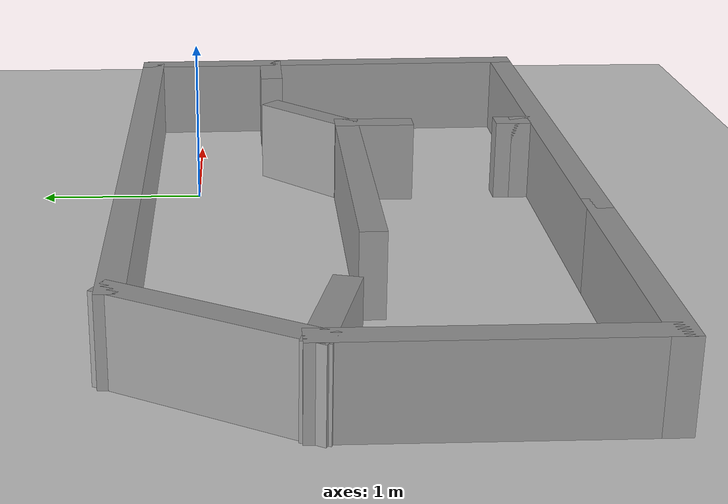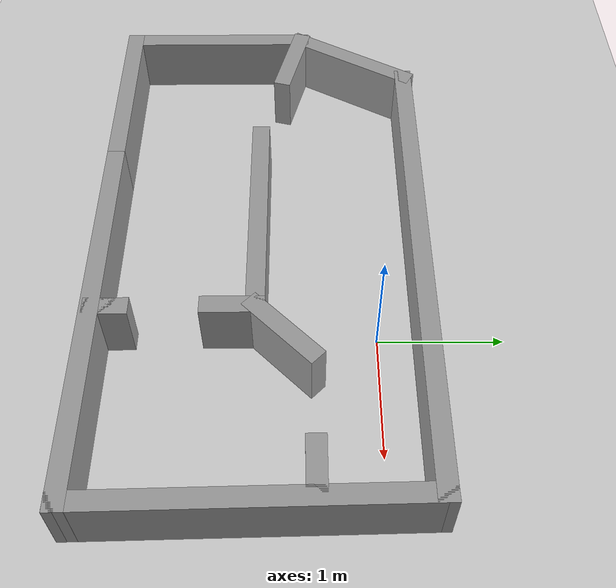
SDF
<sdf version="1.6">
 <world name="default">
  <light name="sun" type="directional">
   <pose>0 0 10 0 -0 0</pose>
   <diffuse>0.8 0.8 0.8 1</diffuse>
   <specular>0.2 0.2 0.2 1</specular>
   <attenuation>
    <range>1000</range>
    <constant>0.9</constant>
    <linear>0.01</linear>
    <quadratic>0.001</quadratic>
   </attenuation>
   <direction>-0.5 0.1 -0.9</direction>
  </light>
  <model name="ground_plane">
   <static>1</static>
   <link name="link">
    <collision name="collision">
     <geometry><plane><normal>0 0 1</normal><size>100 100</size></plane></geometry>
     <surface><friction><ode><mu>100</mu><mu2>50</mu2></ode></friction></surface>
    </collision>
    <visual name="visual">
     <cast_shadows>0</cast_shadows>
     <geometry><plane><normal>0 0 1</normal><size>100 100</size></plane></geometry>
     <material>
      <script><uri>file://media/materials/scripts/gazebo.material</uri><name>Gazebo/Grey</name></script>
     </material>
    </visual>
    <velocity_decay><linear>0</linear><angular>0</angular></velocity_decay>
   </link>
  </model>
  <physics name="default_physics" default="0" type="ode">
   <max_step_size>0.001</max_step_size>
   <real_time_factor>1</real_time_factor>
   <real_time_update_rate>1000</real_time_update_rate>
  </physics>
  <scene><ambient>0.4 0.4 0.4 1</ambient><background>0.7 0.7 0.7 1</background><shadows>1</shadows></scene>
  <spherical_coordinates>
   <surface_model>EARTH_WGS84</surface_model>
   <latitude_deg>0</latitude_deg>
   <longitude_deg>0</longitude_deg>
   <elevation>0</elevation>
   <heading_deg>0</heading_deg>
  </spherical_coordinates>
  <model name="house2">
   <pose>-0.842999 -0.907402 0 0 -0 0</pose>
   <link name="Wall_0">
    <collision name="Wall_0_Collision">
     <geometry><box><size>1.75 0.15 0.5</size></box></geometry>
     <pose>0 0 0.25 0 -0 0</pose>
    </collision>
    <visual name="Wall_0_Visual">
     <pose>0 0 0.25 0 -0 0</pose>
     <geometry><box><size>1.75 0.15 0.5</size></box></geometry>
     <material>
      <script><uri>file://media/materials/scripts/gazebo.material</uri><name>Gazebo/Grey</name></script>
      <ambient>1 1 1 1</ambient>
     </material>
     <meta><layer>0</layer></meta>
    </visual>
    <pose>-1.537 -1.28931 0 0 -0 3.14159</pose>
   </link>
   <link name="Wall_1">
    <collision name="Wall_1_Collision">
     <geometry><box><size>1.75 0.15 0.5</size></box></geometry>
     <pose>0 0 0.25 0 -0 0</pose>
    </collision>
    <visual name="Wall_1_Visual">
     <pose>0 0 0.25 0 -0 0</pose>
     <geometry><box><size>1.75 0.15 0.5</size></box></geometry>
     <material>
      <script><uri>file://media/materials/scripts/gazebo.material</uri><name>Gazebo/Grey</name></script>
      <ambient>1 1 1 1</ambient>
     </material>
     <meta><layer>0</layer></meta>
    </visual>
    <pose>-2.337 -0.489313 0 0 -0 1.5708</pose>
   </link>
   <link name="Wall_10">
    <collision name="Wall_10_Collision">
     <geometry><box><size>0.25 0.15 0.5</size></box></geometry>
     <pose>0 0 0.25 0 -0 0</pose>
    </collision>
    <visual name="Wall_10_Visual">
     <pose>0 0 0.25 0 -0 0</pose>
     <geometry><box><size>0.25 0.15 0.5</size></box></geometry>
     <material>
      <script><uri>file://media/materials/scripts/gazebo.material</uri><name>Gazebo/Grey</name></script>
      <ambient>1 1 1 1</ambient>
     </material>
     <meta><layer>0</layer></meta>
    </visual>
    <pose>0.822999 -1.11931 0 0 -0 1.5708</pose>
   </link>
   <link name="Wall_12">
    <collision name="Wall_12_Collision">
     <geometry><box><size>1.25 0.15 0.5</size></box></geometry>
     <pose>0 0 0.25 0 -0 0</pose>
    </collision>
    <visual name="Wall_12_Visual">
     <pose>0 0 0.25 0 -0 0</pose>
     <geometry><box><size>1.25 0.15 0.5</size></box></geometry>
     <material>
      <script><uri>file://media/materials/scripts/gazebo.material</uri><name>Gazebo/Grey</name></script>
      <ambient>1 1 1 1</ambient>
     </material>
     <meta><layer>0</layer></meta>
    </visual>
    <pose>-2.062 0.787001 0 0 -0 1.0472</pose>
   </link>
   <link name="Wall_13">
    <collision name="Wall_13_Collision">
     <geometry><box><size>4.25 0.15 0.5</size></box></geometry>
     <pose>0 0 0.25 0 -0 0</pose>
    </collision>
    <visual name="Wall_13_Visual">
     <pose>0 0 0.25 0 -0 0</pose>
     <geometry><box><size>4.25 0.15 0.5</size></box></geometry>
     <material>
      <script><uri>file://media/materials/scripts/gazebo.material</uri><name>Gazebo/Grey</name></script>
      <ambient>1 1 1 1</ambient>
     </material>
     <meta><layer>0</layer></meta>
    </visual>
    <pose>0.262999 1.26331 0 0 -0 0</pose>
   </link>
   <link name="Wall_14">
    <collision name="Wall_14_Collision">
     <geometry><box><size>2.70312 0.15 0.5</size></box></geometry>
     <pose>0 0 0.25 0 -0 0</pose>
    </collision>
    <visual name="Wall_14_Visual">
     <pose>0 0 0.25 0 -0 0</pose>
     <geometry><box><size>2.70312 0.15 0.5</size></box></geometry>
     <material>
      <script><uri>file://media/materials/scripts/gazebo.material</uri><name>Gazebo/Grey</name></script>
      <ambient>1 1 1 1</ambient>
     </material>
     <meta><layer>0</layer></meta>
    </visual>
    <pose>2.338 -0.012999 0 0 -0 -1.55121</pose>
   </link>
   <link name="Wall_16">
    <collision name="Wall_16_Collision">
     <geometry><box><size>0.75 0.15 0.5</size></box></geometry>
     <pose>0 0 0.25 0 -0 0</pose>
    </collision>
    <visual name="Wall_16_Visual">
     <pose>0 0 0.25 0 -0 0</pose>
     <geometry><box><size>0.75 0.15 0.5</size></box></geometry>
     <material>
      <script><uri>file://media/materials/scripts/gazebo.material</uri><name>Gazebo/Grey</name></script>
      <ambient>1 1 1 1</ambient>
     </material>
     <meta><layer>0</layer></meta>
    </visual>
    <pose>1.02513 0.172819 0 0 -0 0.785398</pose>
   </link>
   <link name="Wall_2">
    <collision name="Wall_2_Collision">
     <geometry><box><size>0.75 0.15 0.5</size></box></geometry>
     <pose>0 0 0.25 0 -0 0</pose>
    </collision>
    <visual name="Wall_2_Visual">
     <pose>0 0 0.25 0 -0 0</pose>
     <geometry><box><size>0.75 0.15 0.5</size></box></geometry>
     <material>
      <script><uri>file://media/materials/scripts/gazebo.material</uri><name>Gazebo/Grey</name></script>
      <ambient>1 1 1 1</ambient>
     </material>
     <meta><layer>0</layer></meta>
    </visual>
    <pose>-2.04722 0.233042 0 0 -0 -0.261799</pose>
   </link>
   <link name="Wall_20">
    <collision name="Wall_20_Collision">
     <geometry><box><size>0.5 0.15 0.5</size></box></geometry>
     <pose>0 0 0.25 0 -0 0</pose>
    </collision>
    <visual name="Wall_20_Visual">
     <pose>0 0 0.25 0 -0 0</pose>
     <geometry><box><size>0.5 0.15 0.5</size></box></geometry>
     <material>
      <script><uri>file://media/materials/scripts/gazebo.material</uri><name>Gazebo/Grey</name></script>
      <ambient>1 1 1 1</ambient>
     </material>
     <meta><layer>0</layer></meta>
    </visual>
    <pose>2.138 0.410687 0 0 -0 3.14159</pose>
   </link>
   <link name="Wall_4">
    <collision name="Wall_4_Collision">
     <geometry><box><size>2 0.15 0.5</size></box></geometry>
     <pose>0 0 0.25 0 -0 0</pose>
    </collision>
    <visual name="Wall_4_Visual">
     <pose>0 0 0.25 0 -0 0</pose>
     <geometry><box><size>2 0.15 0.5</size></box></geometry>
     <material>
      <script><uri>file://media/materials/scripts/gazebo.material</uri><name>Gazebo/Grey</name></script>
      <ambient>1 1 1 1</ambient>
     </material>
     <meta><layer>0</layer></meta>
    </visual>
    <pose>-0.112001 -0.039313 0 0 -0 0</pose>
   </link>
   <link name="Wall_5">
    <collision name="Wall_5_Collision">
     <geometry><box><size>0.5 0.15 0.5</size></box></geometry>
     <pose>0 0 0.25 0 -0 0</pose>
    </collision>
    <visual name="Wall_5_Visual">
     <pose>0 0 0.25 0 -0 0</pose>
     <geometry><box><size>0.5 0.15 0.5</size></box></geometry>
     <material>
      <script><uri>file://media/materials/scripts/gazebo.material</uri><name>Gazebo/Grey</name></script>
      <ambient>1 1 1 1</ambient>
     </material>
     <meta><layer>0</layer></meta>
    </visual>
    <pose>0.812999 -0.214313 0 0 -0 -1.5708</pose>
   </link>
   <link name="Wall_7">
    <collision name="Wall_7_Collision">
     <geometry><box><size>3.25 0.15 0.5</size></box></geometry>
     <pose>0 0 0.25 0 -0 0</pose>
    </collision>
    <visual name="Wall_7_Visual">
     <pose>0 0 0.25 0 -0 0</pose>
     <geometry><box><size>3.25 0.15 0.5</size></box></geometry>
     <material>
      <script><uri>file://media/materials/scripts/gazebo.material</uri><name>Gazebo/Grey</name></script>
      <ambient>1 1 1 1</ambient>
     </material>
     <meta><layer>0</layer></meta>
    </visual>
    <pose>0.812999 -1.28931 0 0 -0 0</pose>
   </link>
   <link name="Wall_9">
    <collision name="Wall_9_Collision">
     <geometry><box><size>0.25 0.15 0.5</size></box></geometry>
     <pose>0 0 0.25 0 -0 0</pose>
    </collision>
    <visual name="Wall_9_Visual">
     <pose>0 0 0.25 0 -0 0</pose>
     <geometry><box><size>0.25 0.15 0.5</size></box></geometry>
     <material>
      <script><uri>file://media/materials/scripts/gazebo.material</uri><name>Gazebo/Grey</name></script>
      <ambient>1 1 1 1</ambient>
     </material>
     <meta><layer>0</layer></meta>
    </visual>
    <pose>0.822999 -1.21931 0 0 -0 1.5708</pose>
   </link>
   <static>1</static>
  </model>
  <gravity>0 0 -9.8</gravity>
  <magnetic_field>6e-06 2.3e-05 -4.2e-05</magnetic_field>
  <atmosphere type="adiabatic"/>
 </world>
</sdf>
